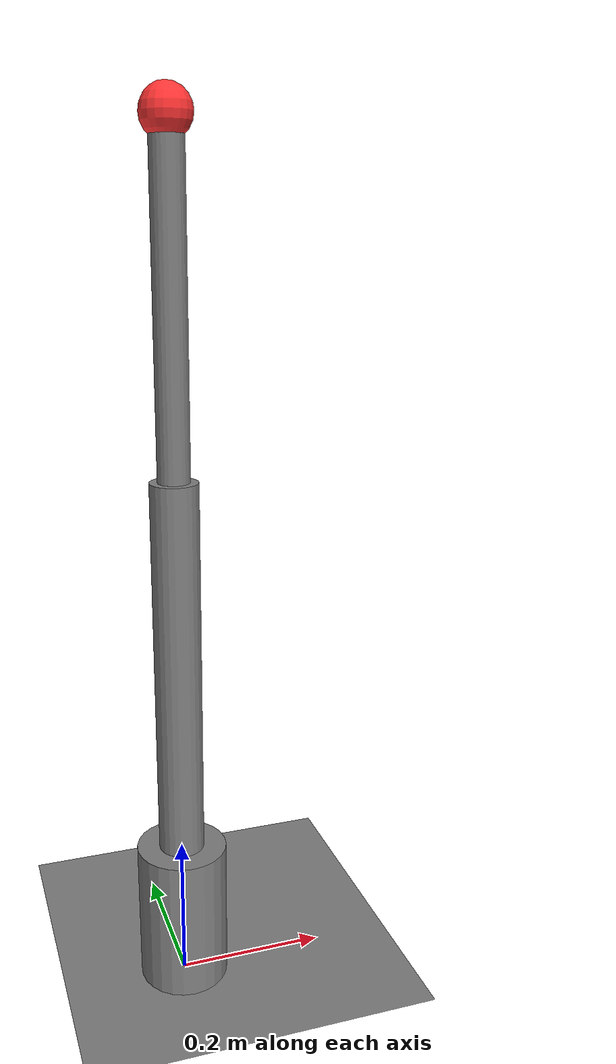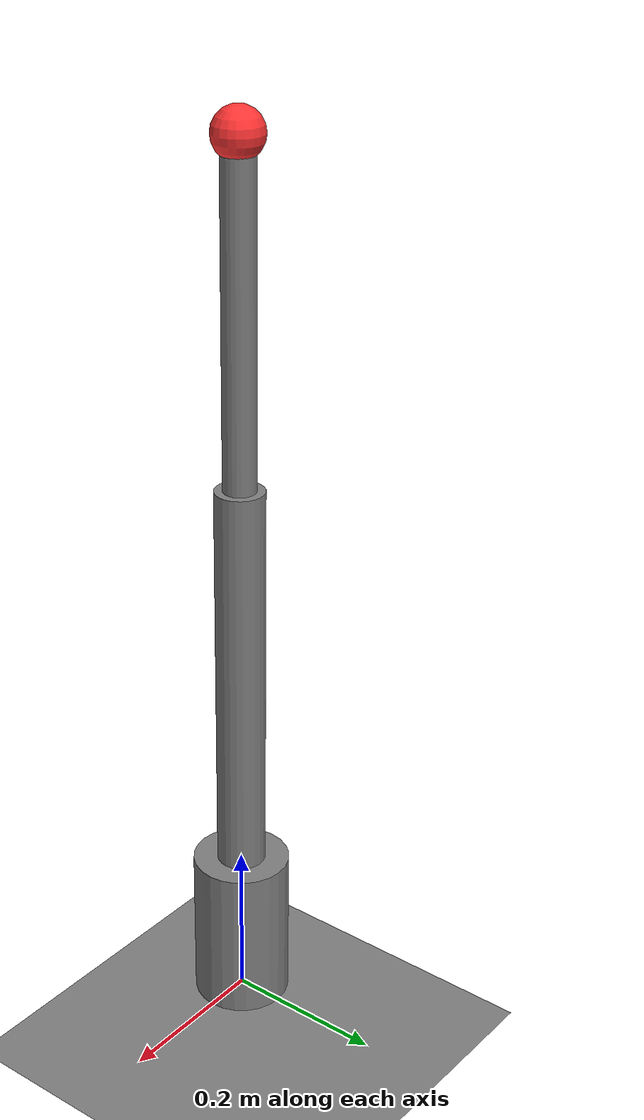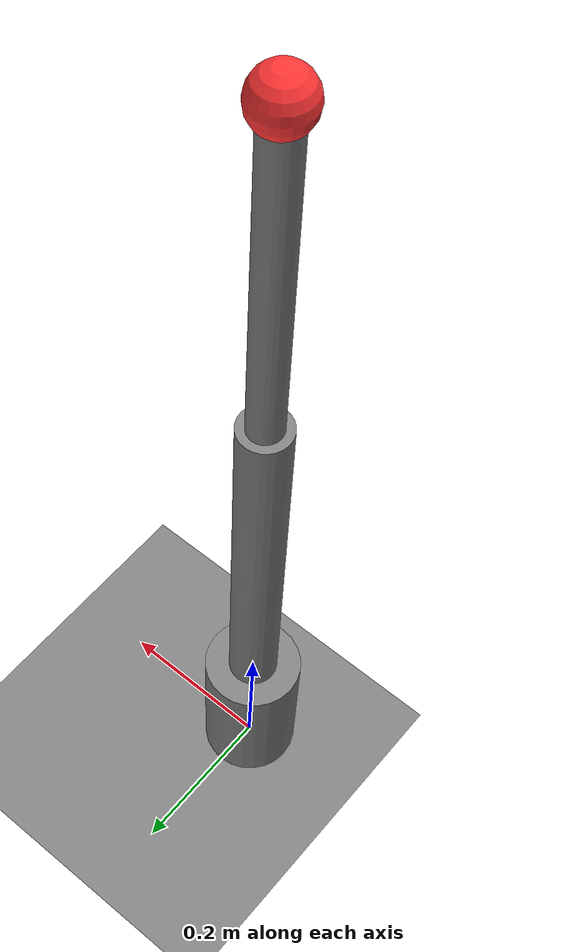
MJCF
<mujoco model="crane">
    <worldbody>
        <light diffuse=".8 .8 .8" pos="0 0 3" dir="0 0 -1"/>
        <geom type="plane" size="1 1 0.01"/>

        <geom type="cylinder" size="0.06 0.1" pos="0 0 0.1"/>
        <body name="upper_arm" pos="0 0 0.2">
            <joint name="shoulder" type="hinge" axis="0 1 0" damping="0.1"/>
            <geom type="cylinder" size="0.03 0.25" mass="1.5" pos="0 0 0.25"/>

            <body name="forearm" pos="0 0 0.5">
                <joint name="elbow" type="hinge" axis="0 1 0" damping="0.1"/>
                <geom type="cylinder" size="0.02 0.2" mass="1.0" pos="0 0 0.2"/>

                <site name="gripper" size="0.03" pos="0 0 0.4" rgba="1 0.2 0.2 1"/>
            </body>
        </body>

    </worldbody>
    <actuator>
        <motor joint="shoulder"/>
        <motor joint="elbow"/>
    </actuator>
</mujoco>
